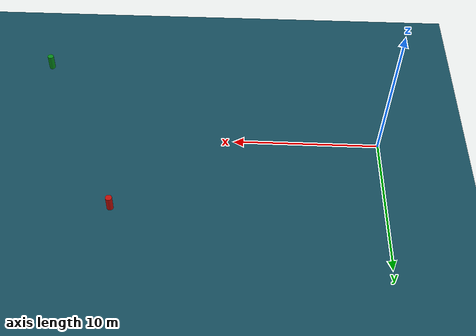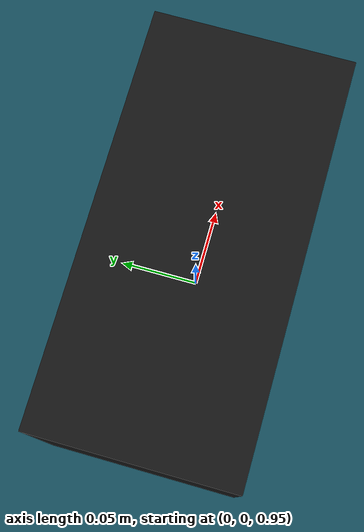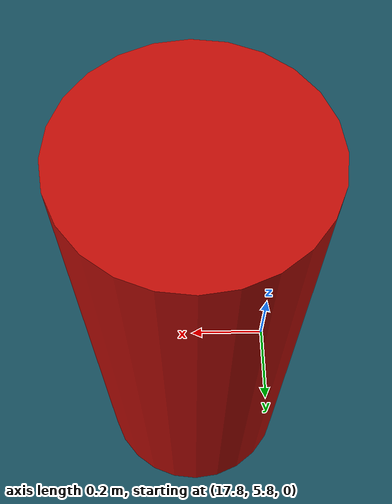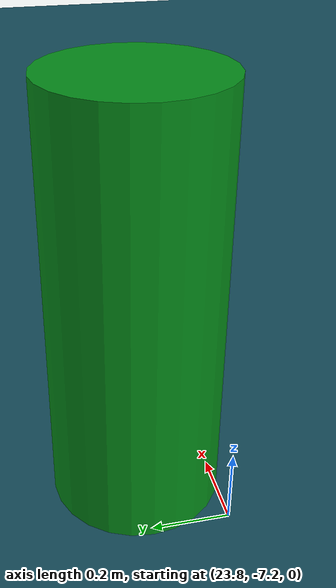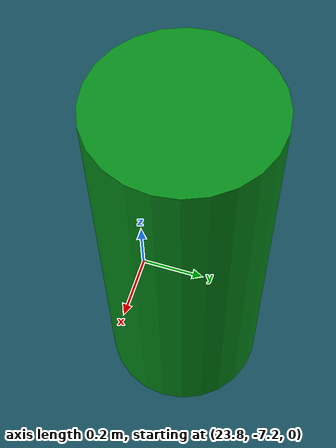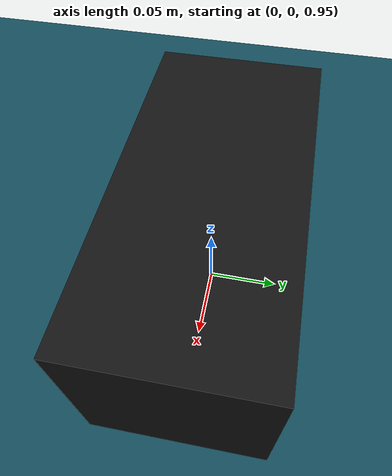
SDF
<?xml version="1.0" ?>
<sdf version="1.7">
  <world name="ocean_fog">
    <scene>
      <ambient>0.18 0.20 0.22 1</ambient>
      <background>0.58 0.64 0.68 1</background>
      <shadows>false</shadows>
      <fog>
        <type>linear</type>
        <color>0.62 0.68 0.70 1</color>
        <start>3.0</start>
        <end>38.0</end>
        <density>0.08</density>
      </fog>
    </scene>

    <physics name="default_physics" type="ode">
      <max_step_size>0.002</max_step_size>
      <real_time_update_rate>500</real_time_update_rate>
      <ode>
        <solver>
          <type>quick</type>
          <iters>80</iters>
          <sor>1.2</sor>
        </solver>
        <constraints>
          <cfm>0.0</cfm>
          <erp>0.2</erp>
        </constraints>
      </ode>
    </physics>

    <light name="diffuse_sun" type="directional">
      <pose>0 0 80 0 0 0</pose>
      <diffuse>0.55 0.56 0.54 1</diffuse>
      <specular>0.05 0.05 0.05 1</specular>
      <direction>-0.2 0.4 -0.9</direction>
      <cast_shadows>false</cast_shadows>
    </light>

    <model name="foggy_ocean_surface">
      <static>true</static>
      <link name="water">
        <visual name="water_visual">
          <pose>0 0 -0.04 0 0 0</pose>
          <geometry>
            <plane>
              <normal>0 0 1</normal>
              <size>600 600</size>
            </plane>
          </geometry>
          <material>
            <ambient>0.05 0.18 0.22 0.82</ambient>
            <diffuse>0.08 0.30 0.36 0.82</diffuse>
            <specular>0.10 0.12 0.12 1</specular>
          </material>
        </visual>
      </link>
    </model>

    <model name="navigation_marker_port">
      <static>true</static>
      <pose>18 6 0.55 0 0 0</pose>
      <link name="link">
        <visual name="body">
          <geometry>
            <cylinder>
              <radius>0.22</radius>
              <length>1.1</length>
            </cylinder>
          </geometry>
          <material>
            <ambient>0.75 0.05 0.03 1</ambient>
            <diffuse>0.75 0.05 0.03 1</diffuse>
          </material>
        </visual>
      </link>
    </model>

    <model name="navigation_marker_starboard">
      <static>true</static>
      <pose>24 -7 0.55 0 0 0</pose>
      <link name="link">
        <visual name="body">
          <geometry>
            <cylinder>
              <radius>0.22</radius>
              <length>1.1</length>
            </cylinder>
          </geometry>
          <material>
            <ambient>0.02 0.55 0.10 1</ambient>
            <diffuse>0.02 0.55 0.10 1</diffuse>
          </material>
        </visual>
      </link>
    </model>

    <model name="depth_camera_model">
      <static>true</static>
      <pose>0 0 1.0 0 0 0</pose>
      <link name="camera_depth_frame">
        <visual name="body">
          <geometry>
            <box>
              <size>0.25 0.12 0.12</size>
            </box>
          </geometry>
          <material>
            <ambient>0.08 0.08 0.08 1</ambient>
            <diffuse>0.08 0.08 0.08 1</diffuse>
          </material>
        </visual>
        <sensor type="depth" name="camera_sensor">
          <always_on>true</always_on>
          <update_rate>30</update_rate>
          <visualize>false</visualize>
          <camera>
            <horizontal_fov>1.047</horizontal_fov>
            <image>
              <width>640</width>
              <height>480</height>
              <format>B8G8R8</format>
            </image>
            <depth_camera>
            </depth_camera>
            <clip>
              <near>0.1</near>
              <far>20.0</far>
            </clip>
            <noise>
              <type>gaussian</type>
              <mean>0.0</mean>
              <stddev>0.003</stddev>
            </noise>
          </camera>
          <plugin name="camera_controller" filename="libgazebo_ros_camera.so">
            <ros>
              <remapping>/depth_camera/points:=/camera/points</remapping>
            </ros>
            <camera_name>depth_camera</camera_name>
            <frame_name>camera_depth_frame</frame_name>
            <min_depth>0.1</min_depth>
            <max_depth>20.0</max_depth>
          </plugin>
        </sensor>
      </link>
    </model>
  </world>
</sdf>
